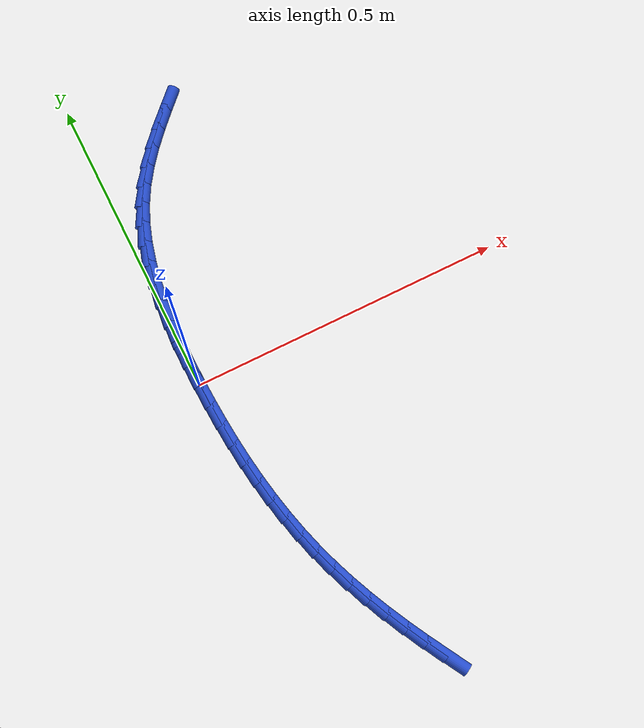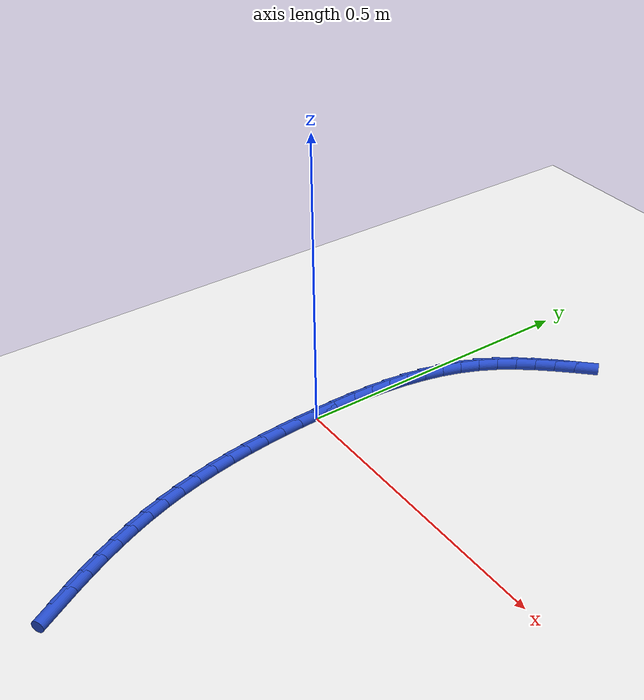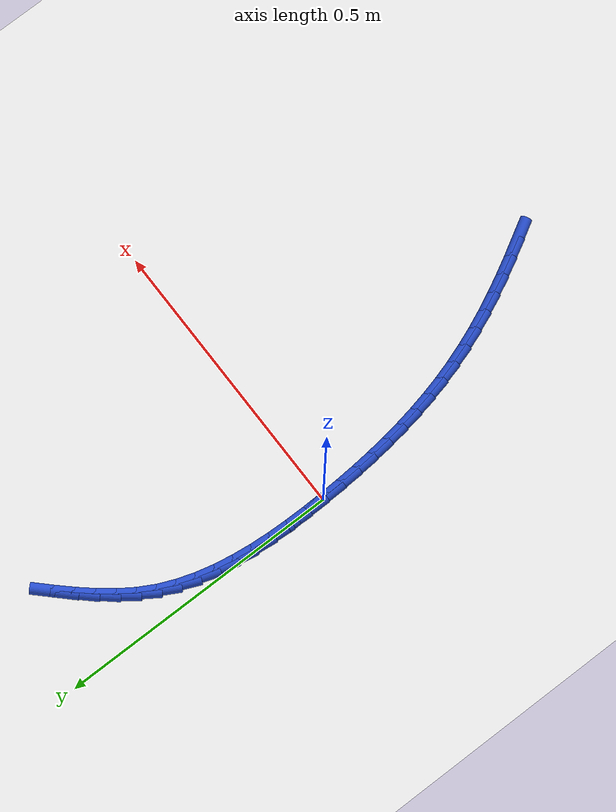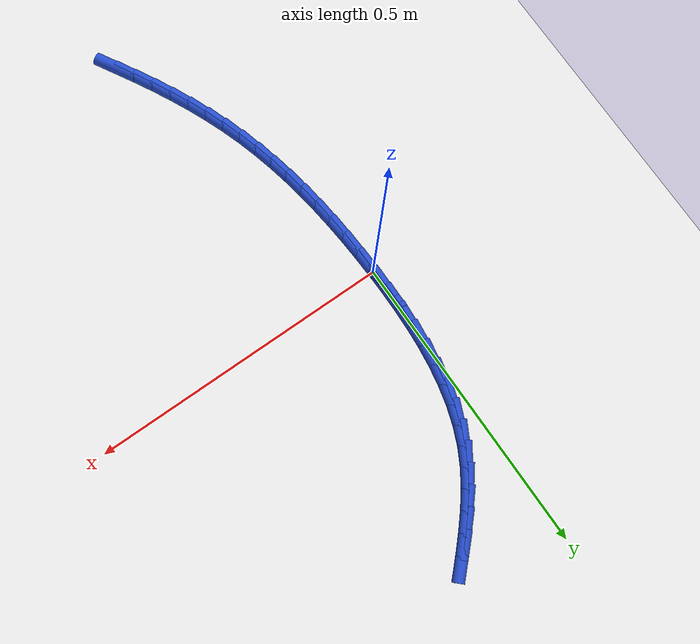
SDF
<sdf version="1.6">
 <world name="default">
  <model name="ground_plane">
   <static>1</static>
   <link name="link">
    <collision name="collision">
     <geometry><plane><normal>0 0 1</normal><size>100 100</size></plane></geometry>
     <surface><friction><ode><mu>100</mu><mu2>50</mu2></ode></friction></surface>
    </collision>
    <visual name="visual">
     <cast_shadows>0</cast_shadows>
     <geometry><plane><normal>0 0 1</normal><size>100 100</size></plane></geometry>
     <material>
      <script><uri>file://media/materials/scripts/gazebo.material</uri><name>Gazebo/WhiteGlow</name></script>
     </material>
    </visual>
   </link>
  </model>
  <model name="line">
   <link name="link_0">
    <pose>1.1926223897340549e-17 4.85722573273506e-17 0.01 0 1.57 -1.5491836517026998</pose>
    <collision name="collision">
     <geometry><cylinder><radius>0.01</radius><length>0.08</length></cylinder></geometry>
    </collision>
    <visual name="visual">
     <material>
      <script><name>Gazebo/Blue</name><uri>file://media/materials/scripts/gazebo.material</uri></script>
     </material>
     <geometry><cylinder><radius>0.01</radius><length>0.08</length></cylinder></geometry>
    </visual>
   </link>
   <link name="link_1">
    <pose>-0.0007551033656751283 0.03493254709353343 0.01 0 1.57 1.567103791292674</pose>
    <collision name="collision">
     <geometry><cylinder><radius>0.01</radius><length>0.08</length></cylinder></geometry>
    </collision>
    <visual name="visual">
     <material>
      <script><name>Gazebo/Blue</name><uri>file://media/materials/scripts/gazebo.material</uri></script>
     </material>
     <geometry><cylinder><radius>0.01</radius><length>0.08</length></cylinder></geometry>
    </visual>
   </link>
   <link name="link_2">
    <pose>-0.0006257459633883587 0.06996452289628702 0.01 0 1.57 1.5350869671217766</pose>
    <collision name="collision">
     <geometry><cylinder><radius>0.01</radius><length>0.08</length></cylinder></geometry>
    </collision>
    <visual name="visual">
     <material>
      <script><name>Gazebo/Blue</name><uri>file://media/materials/scripts/gazebo.material</uri></script>
     </material>
     <geometry><cylinder><radius>0.01</radius><length>0.08</length></cylinder></geometry>
    </visual>
   </link>
   <link name="link_3">
    <pose>0.0006219113323401345 0.10488889403714445 0.01 0 1.57 1.4958196463155706</pose>
    <collision name="collision">
     <geometry><cylinder><radius>0.01</radius><length>0.08</length></cylinder></geometry>
    </collision>
    <visual name="visual">
     <material>
      <script><name>Gazebo/Blue</name><uri>file://media/materials/scripts/gazebo.material</uri></script>
     </material>
     <geometry><cylinder><radius>0.01</radius><length>0.08</length></cylinder></geometry>
    </visual>
   </link>
   <link name="link_4">
    <pose>0.0032217076469901657 0.13949862714498928 0.01 0 1.57 1.448614991465417</pose>
    <collision name="collision">
     <geometry><cylinder><radius>0.01</radius><length>0.08</length></cylinder></geometry>
    </collision>
    <visual name="visual">
     <material>
      <script><name>Gazebo/Blue</name><uri>file://media/materials/scripts/gazebo.material</uri></script>
     </material>
     <geometry><cylinder><radius>0.01</radius><length>0.08</length></cylinder></geometry>
    </visual>
   </link>
   <link name="link_5">
    <pose>0.0074074821060415505 0.1735866888487052 0.01 0 1.57 1.3926770391957781</pose>
    <collision name="collision">
     <geometry><cylinder><radius>0.01</radius><length>0.08</length></cylinder></geometry>
    </collision>
    <visual name="visual">
     <material>
      <script><name>Gazebo/Blue</name><uri>file://media/materials/scripts/gazebo.material</uri></script>
     </material>
     <geometry><cylinder><radius>0.01</radius><length>0.08</length></cylinder></geometry>
    </visual>
   </link>
   <link name="link_6">
    <pose>0.013413073834974101 0.20694604577717599 0.01 0 1.57 1.3271724449860847</pose>
    <collision name="collision">
     <geometry><cylinder><radius>0.01</radius><length>0.08</length></cylinder></geometry>
    </collision>
    <visual name="visual">
     <material>
      <script><name>Gazebo/Blue</name><uri>file://media/materials/scripts/gazebo.material</uri></script>
     </material>
     <geometry><cylinder><radius>0.01</radius><length>0.08</length></cylinder></geometry>
    </visual>
   </link>
   <link name="link_7">
    <pose>0.021472321959267637 0.23936966455928504 0.01 0 1.57 1.2513551835862469</pose>
    <collision name="collision">
     <geometry><cylinder><radius>0.01</radius><length>0.08</length></cylinder></geometry>
    </collision>
    <visual name="visual">
     <material>
      <script><name>Gazebo/Blue</name><uri>file://media/materials/scripts/gazebo.material</uri></script>
     </material>
     <geometry><cylinder><radius>0.01</radius><length>0.08</length></cylinder></geometry>
    </visual>
   </link>
   <link name="link_8">
    <pose>0.03181906560440195 0.2706505118239161 0.01 0 1.57 1.1647622745118291</pose>
    <collision name="collision">
     <geometry><cylinder><radius>0.01</radius><length>0.08</length></cylinder></geometry>
    </collision>
    <visual name="visual">
     <material>
      <script><name>Gazebo/Blue</name><uri>file://media/materials/scripts/gazebo.material</uri></script>
     </material>
     <geometry><cylinder><radius>0.01</radius><length>0.08</length></cylinder></geometry>
    </visual>
   </link>
   <link name="link_9">
    <pose>0.04468714389585687 0.3005815541999528 0.01 0 1.57 1.0689883449501432</pose>
    <collision name="collision">
     <geometry><cylinder><radius>0.01</radius><length>0.08</length></cylinder></geometry>
    </collision>
    <visual name="visual">
     <material>
      <script><name>Gazebo/Blue</name><uri>file://media/materials/scripts/gazebo.material</uri></script>
     </material>
     <geometry><cylinder><radius>0.01</radius><length>0.08</length></cylinder></geometry>
    </visual>
   </link>
   <link name="link_10">
    <pose>0.06027077677081624 0.32898502681090963 0.01 0 1.57 0.9801717202251125</pose>
    <collision name="collision">
     <geometry><cylinder><radius>0.01</radius><length>0.08</length></cylinder></geometry>
    </collision>
    <visual name="visual">
     <material>
      <script><name>Gazebo/Blue</name><uri>file://media/materials/scripts/gazebo.material</uri></script>
     </material>
     <geometry><cylinder><radius>0.01</radius><length>0.08</length></cylinder></geometry>
    </visual>
   </link>
   <link name="link_11">
    <pose>0.07836736968383333 0.35597630966927335 0.01 0 1.57 0.9082535807185579</pose>
    <collision name="collision">
     <geometry><cylinder><radius>0.01</radius><length>0.08</length></cylinder></geometry>
    </collision>
    <visual name="visual">
     <material>
      <script><name>Gazebo/Blue</name><uri>file://media/materials/scripts/gazebo.material</uri></script>
     </material>
     <geometry><cylinder><radius>0.01</radius><length>0.08</length></cylinder></geometry>
    </visual>
   </link>
   <link name="link_12">
    <pose>0.09854566436041864 0.3818397070743114 0.01 0 1.57 0.8535105636517946</pose>
    <collision name="collision">
     <geometry><cylinder><radius>0.01</radius><length>0.08</length></cylinder></geometry>
    </collision>
    <visual name="visual">
     <material>
      <script><name>Gazebo/Blue</name><uri>file://media/materials/scripts/gazebo.material</uri></script>
     </material>
     <geometry><cylinder><radius>0.01</radius><length>0.08</length></cylinder></geometry>
    </visual>
   </link>
   <link name="link_13">
    <pose>0.12037165102581888 0.40686155598356005 0.01 0 1.57 0.8154265885934336</pose>
    <collision name="collision">
     <geometry><cylinder><radius>0.01</radius><length>0.08</length></cylinder></geometry>
    </collision>
    <visual name="visual">
     <material>
      <script><name>Gazebo/Blue</name><uri>file://media/materials/scripts/gazebo.material</uri></script>
     </material>
     <geometry><cylinder><radius>0.01</radius><length>0.08</length></cylinder></geometry>
    </visual>
   </link>
   <link name="link_14">
    <pose>0.14341131990528067 0.43132819335455536 0.01 0 1.57 0.7932789726272074</pose>
    <collision name="collision">
     <geometry><cylinder><radius>0.01</radius><length>0.08</length></cylinder></geometry>
    </collision>
    <visual name="visual">
     <material>
      <script><name>Gazebo/Blue</name><uri>file://media/materials/scripts/gazebo.material</uri></script>
     </material>
     <geometry><cylinder><radius>0.01</radius><length>0.08</length></cylinder></geometry>
    </visual>
   </link>
   <link name="link_184">
    <pose>0.1448791848279034 -0.5128900320567944 0.01 0 1.57 -1.0508762132736218</pose>
    <collision name="collision">
     <geometry><cylinder><radius>0.01</radius><length>0.08</length></cylinder></geometry>
    </collision>
    <visual name="visual">
     <material>
      <script><name>Gazebo/Blue</name><uri>file://media/materials/scripts/gazebo.material</uri></script>
     </material>
     <geometry><cylinder><radius>0.01</radius><length>0.08</length></cylinder></geometry>
    </visual>
   </link>
   <link name="link_185">
    <pose>0.12800508174351213 -0.4834133383574445 0.01 0 1.57 -1.0736532976465636</pose>
    <collision name="collision">
     <geometry><cylinder><radius>0.01</radius><length>0.08</length></cylinder></geometry>
    </collision>
    <visual name="visual">
     <material>
      <script><name>Gazebo/Blue</name><uri>file://media/materials/scripts/gazebo.material</uri></script>
     </material>
     <geometry><cylinder><radius>0.01</radius><length>0.08</length></cylinder></geometry>
    </visual>
   </link>
   <link name="link_186">
    <pose>0.1118522934465231 -0.45364402602774384 0.01 0 1.57 -1.0998111062803544</pose>
    <collision name="collision">
     <geometry><cylinder><radius>0.01</radius><length>0.08</length></cylinder></geometry>
    </collision>
    <visual name="visual">
     <material>
      <script><name>Gazebo/Blue</name><uri>file://media/materials/scripts/gazebo.material</uri></script>
     </material>
     <geometry><cylinder><radius>0.01</radius><length>0.08</length></cylinder></geometry>
    </visual>
   </link>
   <link name="link_187">
    <pose>0.09653577701107299 -0.4235648089623999 0.01 0 1.57 -1.1294365294791973</pose>
    <collision name="collision">
     <geometry><cylinder><radius>0.01</radius><length>0.08</length></cylinder></geometry>
    </collision>
    <visual name="visual">
     <material>
      <script><name>Gazebo/Blue</name><uri>file://media/materials/scripts/gazebo.material</uri></script>
     </material>
     <geometry><cylinder><radius>0.01</radius><length>0.08</length></cylinder></geometry>
    </visual>
   </link>
   <link name="link_188">
    <pose>0.08217048951129846 -0.39315840105612077 0.01 0 1.57 -1.1626082783333502</pose>
    <collision name="collision">
     <geometry><cylinder><radius>0.01</radius><length>0.08</length></cylinder></geometry>
    </collision>
    <visual name="visual">
     <material>
      <script><name>Gazebo/Blue</name><uri>file://media/materials/scripts/gazebo.material</uri></script>
     </material>
     <geometry><cylinder><radius>0.01</radius><length>0.08</length></cylinder></geometry>
    </visual>
   </link>
   <link name="link_189">
    <pose>0.06887138802133622 -0.3624075162036136 0.01 0 1.57 -1.1993859805267213</pose>
    <collision name="collision">
     <geometry><cylinder><radius>0.01</radius><length>0.08</length></cylinder></geometry>
    </collision>
    <visual name="visual">
     <material>
      <script><name>Gazebo/Blue</name><uri>file://media/materials/scripts/gazebo.material</uri></script>
     </material>
     <geometry><cylinder><radius>0.01</radius><length>0.08</length></cylinder></geometry>
    </visual>
   </link>
   <link name="link_190">
    <pose>0.05675342961532292 -0.3312948682995865 0.01 0 1.57 -1.2397734993734193</pose>
    <collision name="collision">
     <geometry><cylinder><radius>0.01</radius><length>0.08</length></cylinder></geometry>
    </collision>
    <visual name="visual">
     <material>
      <script><name>Gazebo/Blue</name><uri>file://media/materials/scripts/gazebo.material</uri></script>
     </material>
     <geometry><cylinder><radius>0.01</radius><length>0.08</length></cylinder></geometry>
    </visual>
   </link>
   <link name="link_191">
    <pose>0.045930775407822734 -0.2998032800751966 0.01 0 1.57 -1.281766229984369</pose>
    <collision name="collision">
     <geometry><cylinder><radius>0.01</radius><length>0.08</length></cylinder></geometry>
    </collision>
    <visual name="visual">
     <material>
      <script><name>Gazebo/Blue</name><uri>file://media/materials/scripts/gazebo.material</uri></script>
     </material>
     <geometry><cylinder><radius>0.01</radius><length>0.08</length></cylinder></geometry>
    </visual>
   </link>
   <link name="link_192">
    <pose>0.036451438206450276 -0.2679246191266054 0.01 0 1.57 -1.3217879346378019</pose>
    <collision name="collision">
     <geometry><cylinder><radius>0.01</radius><length>0.08</length></cylinder></geometry>
    </collision>
    <visual name="visual">
     <material>
      <script><name>Gazebo/Blue</name><uri>file://media/materials/scripts/gazebo.material</uri></script>
     </material>
     <geometry><cylinder><radius>0.01</radius><length>0.08</length></cylinder></geometry>
    </visual>
   </link>
   <link name="link_193">
    <pose>0.028248639521096 -0.23566644917039253 0.01 0 1.57 -1.3593318179587373</pose>
    <collision name="collision">
     <geometry><cylinder><radius>0.01</radius><length>0.08</length></cylinder></geometry>
    </collision>
    <visual name="visual">
     <material>
      <script><name>Gazebo/Blue</name><uri>file://media/materials/scripts/gazebo.material</uri></script>
     </material>
     <geometry><cylinder><radius>0.01</radius><length>0.08</length></cylinder></geometry>
    </visual>
   </link>
   <link name="link_194">
    <pose>0.021244139742568068 -0.2030379010724691 0.01 0 1.57 -1.3942811926173087</pose>
    <collision name="collision">
     <geometry><cylinder><radius>0.01</radius><length>0.08</length></cylinder></geometry>
    </collision>
    <visual name="visual">
     <material>
      <script><name>Gazebo/Blue</name><uri>file://media/materials/scripts/gazebo.material</uri></script>
     </material>
     <geometry><cylinder><radius>0.01</radius><length>0.08</length></cylinder></geometry>
    </visual>
   </link>
   <link name="link_195">
    <pose>0.015359699261674475 -0.17004810569874582 0.01 0 1.57 -1.426563635494047</pose>
    <collision name="collision">
     <geometry><cylinder><radius>0.01</radius><length>0.08</length></cylinder></geometry>
    </collision>
    <visual name="visual">
     <material>
      <script><name>Gazebo/Blue</name><uri>file://media/materials/scripts/gazebo.material</uri></script>
     </material>
     <geometry><cylinder><radius>0.01</radius><length>0.08</length></cylinder></geometry>
    </visual>
   </link>
   <link name="link_196">
    <pose>0.010517078469223163 -0.13670619391513314 0.01 0 1.57 -1.45614467454051</pose>
    <collision name="collision">
     <geometry><cylinder><radius>0.01</radius><length>0.08</length></cylinder></geometry>
    </collision>
    <visual name="visual">
     <material>
      <script><name>Gazebo/Blue</name><uri>file://media/materials/scripts/gazebo.material</uri></script>
     </material>
     <geometry><cylinder><radius>0.01</radius><length>0.08</length></cylinder></geometry>
    </visual>
   </link>
   <link name="link_197">
    <pose>0.0066380377560221 -0.10302129658754168 0.01 0 1.57 -1.4830209740407416</pose>
    <collision name="collision">
     <geometry><cylinder><radius>0.01</radius><length>0.08</length></cylinder></geometry>
    </collision>
    <visual name="visual">
     <material>
      <script><name>Gazebo/Blue</name><uri>file://media/materials/scripts/gazebo.material</uri></script>
     </material>
     <geometry><cylinder><radius>0.01</radius><length>0.08</length></cylinder></geometry>
    </visual>
   </link>
   <link name="link_198">
    <pose>0.0036443375128792483 -0.06900254458188196 0.01 0 1.57 -1.5072135967120868</pose>
    <collision name="collision">
     <geometry><cylinder><radius>0.01</radius><length>0.08</length></cylinder></geometry>
    </collision>
    <visual name="visual">
     <material>
      <script><name>Gazebo/Blue</name><uri>file://media/materials/scripts/gazebo.material</uri></script>
     </material>
     <geometry><cylinder><radius>0.01</radius><length>0.08</length></cylinder></geometry>
    </visual>
   </link>
   <link name="link_199">
    <pose>0.001457738130602569 -0.03465906876406462 0.01 0 1.57 -1.528761744814445</pose>
    <collision name="collision">
     <geometry><cylinder><radius>0.01</radius><length>0.08</length></cylinder></geometry>
    </collision>
    <visual name="visual">
     <material>
      <script><name>Gazebo/Blue</name><uri>file://media/materials/scripts/gazebo.material</uri></script>
     </material>
     <geometry><cylinder><radius>0.01</radius><length>0.08</length></cylinder></geometry>
    </visual>
   </link>
   <link name="link_200">
    <pose>2.1250362580715887e-17 -1.249000902703301e-16 0.01 0 1.57 -1.5477172211349934</pose>
    <collision name="collision">
     <geometry><cylinder><radius>0.01</radius><length>0.08</length></cylinder></geometry>
    </collision>
    <visual name="visual">
     <material>
      <script><name>Gazebo/Blue</name><uri>file://media/materials/scripts/gazebo.material</uri></script>
     </material>
     <geometry><cylinder><radius>0.01</radius><length>0.08</length></cylinder></geometry>
    </visual>
   </link>
   <link name="link_201">
    <pose>-0.0008071164881204396 0.0349655308444017 0.01 0 1.57 -1.5477172211349937</pose>
    <collision name="collision">
     <geometry><cylinder><radius>0.01</radius><length>0.08</length></cylinder></geometry>
    </collision>
    <visual name="visual">
     <material>
      <script><name>Gazebo/Blue</name><uri>file://media/materials/scripts/gazebo.material</uri></script>
     </material>
     <geometry><cylinder><radius>0.01</radius><length>0.08</length></cylinder></geometry>
    </visual>
   </link>
  </model>
 </world>
</sdf>
